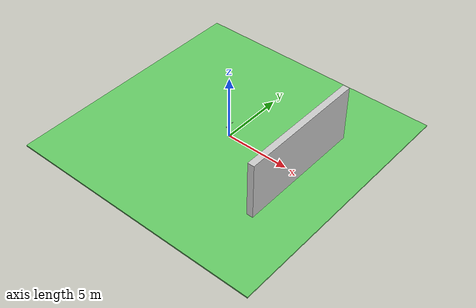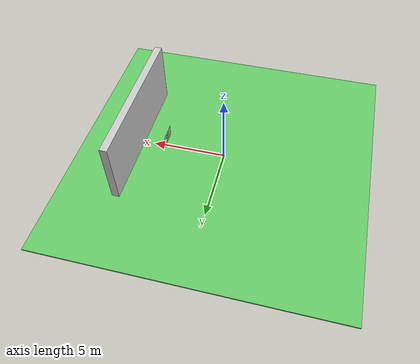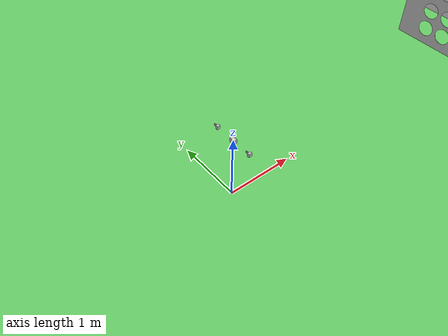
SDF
<?xml version="1.0" ?>
<!--
  Demo world consisting of a thermal camera sensor and several models with
  different temperatures specified via the thermal system plugin.
-->

<sdf version="1.6">
  <world name="thermal_camera">
    <physics name="1ms" type="ignored">
      <max_step_size>0.001</max_step_size>
      <real_time_factor>1.0</real_time_factor>
    </physics>
    <plugin
      filename="ignition-gazebo-physics-system"
      name="ignition::gazebo::systems::Physics">
    </plugin>
    <plugin
      filename="ignition-gazebo-sensors-system"
      name="ignition::gazebo::systems::Sensors">
      <render_engine>ogre2</render_engine>
    </plugin>
    <plugin
      filename="ignition-gazebo-scene-broadcaster-system"
      name="ignition::gazebo::systems::SceneBroadcaster">
    </plugin>
    <plugin
      filename="ignition-gazebo-user-commands-system"
      name="ignition::gazebo::systems::UserCommands">
    </plugin>

    <gui fullscreen="0">

      <!-- 3D scene -->
      <plugin filename="GzScene3D" name="3D View">
        <ignition-gui>
          <title>3D View</title>
          <property type="bool" key="showTitleBar">false</property>
          <property type="string" key="state">docked</property>
        </ignition-gui>

        <engine>ogre2</engine>
        <scene>scene</scene>
        <ambient_light>0.4 0.4 0.4</ambient_light>
        <background_color>0.2 0.2 0.8</background_color>
        <camera_pose>-6 0 6 0 0.5 0</camera_pose>
      </plugin>

      <!-- World control -->
      <plugin filename="WorldControl" name="World control">
        <ignition-gui>
          <title>World control</title>
          <property type="bool" key="showTitleBar">false</property>
          <property type="bool" key="resizable">false</property>
          <property type="double" key="height">72</property>
          <property type="double" key="width">121</property>
          <property type="double" key="z">1</property>

          <property type="string" key="state">floating</property>
          <anchors target="3D View">
            <line own="left" target="left"/>
            <line own="bottom" target="bottom"/>
          </anchors>
        </ignition-gui>

        <play_pause>true</play_pause>
        <step>true</step>
        <start_paused>true</start_paused>
        <service>/world/thermal_camera/control</service>
        <stats_topic>/world/thermal_camera/stats</stats_topic>

      </plugin>

      <!-- World statistics -->
      <plugin filename="WorldStats" name="World stats">
        <ignition-gui>
          <title>World stats</title>
          <property type="bool" key="showTitleBar">false</property>
          <property type="bool" key="resizable">false</property>
          <property type="double" key="height">110</property>
          <property type="double" key="width">290</property>
          <property type="double" key="z">1</property>

          <property type="string" key="state">floating</property>
          <anchors target="3D View">
            <line own="right" target="right"/>
            <line own="bottom" target="bottom"/>
          </anchors>
        </ignition-gui>

        <sim_time>true</sim_time>
        <real_time>true</real_time>
        <real_time_factor>true</real_time_factor>
        <iterations>true</iterations>
        <topic>/world/thermal_camera/stats</topic>
      </plugin>

    </gui>

    <light type="directional" name="sun">
      <cast_shadows>true</cast_shadows>
      <pose>-10 0 10 0 0 0</pose>
      <diffuse>0.8 0.8 0.8 1</diffuse>
      <specular>0.2 0.2 0.2 1</specular>
      <attenuation>
        <range>1000</range>
        <constant>0.9</constant>
        <linear>0.01</linear>
        <quadratic>0.001</quadratic>
      </attenuation>
      <direction>-1.0 0.0 -0.9</direction>
    </light>

    <atmosphere type="adiabatic">
      <temperature>300</temperature>
      <temperature_gradient>-0.065</temperature_gradient>
    </atmosphere>

    <model name="ground_plane">
      <static>true</static>
      <link name="link">
        <collision name="collision">
          <geometry>
            <box>
              <size>20 20 0.1</size>
            </box>
          </geometry>
        </collision>
        <visual name="visual">
          <geometry>
            <box>
              <size>20 20 0.1</size>
            </box>
          </geometry>
          <material>
            <ambient>0.2 0.8 0.8 1</ambient>
            <diffuse>0.4 0.8 0.4 1</diffuse>
            <specular>0.8 0.8 0.8 1</specular>
          </material>
        </visual>
      </link>
    </model>

    <!-- Stereo thermal-->
    <model name="thermal_camera_8bit_left">
      <pose>0 0.3 1 0.0 0.0 0</pose>
      <link name="left_thermal_link">
        <pose>0.0 0.0 0.0 0 0 0</pose>
        <collision name="collision">
          <geometry>
            <box>
              <size>0.0465 0.036 0.05</size>
            </box>
          </geometry>
        </collision>
        <visual name="visual">
          <geometry>
            <box>
              <size>0.0465 0.036 0.05</size>
            </box>
          </geometry>
        </visual>
        <sensor name="thermal_camera_8bit_left" type="thermal">
          <camera>
            <horizontal_fov>0.558505</horizontal_fov>
            <image>
              <width>640</width>
              <height>512</height>
              <format>L8</format>
            </image>
            <clip>
              <near>0.1</near>
              <far>100</far>
            </clip>
          </camera>
          <always_on>1</always_on>
          <update_rate>30</update_rate>
          <visualize>true</visualize>
          <topic>thermal_camera_8bit_left/image</topic>
          <plugin
            filename="ignition-gazebo-thermal-sensor-system"
            name="ignition::gazebo::systems::ThermalSensor">
            <min_temp>253.15</min_temp>
            <max_temp>673.15</max_temp>
            <resolution>3.0</resolution>
          </plugin>

        </sensor>
      </link>
      <static>true</static>
    </model>

    <model name="thermal_camera_8bit_right">
      <pose>0 -0.3 1 0.0 0.0 0</pose>
      <link name="right_thermal_link">
        <pose>0.0 0.0 0.0 0 0 0</pose>
        <collision name="collision">
          <geometry>
            <box>
              <size>0.0465 0.036 0.05</size>
            </box>
          </geometry>
        </collision>
        <visual name="visual">
          <geometry>
            <box>
              <size>0.0465 0.036 0.05</size>
            </box>
          </geometry>
        </visual>
        <sensor name="thermal_camera_8bit_right" type="thermal">
          <camera>
            <horizontal_fov>0.558505</horizontal_fov>
            <image>
              <width>640</width>
              <height>512</height>
              <format>L8</format>
            </image>
            <clip>
              <near>0.1</near>
              <far>100</far>
            </clip>
          </camera>
          <always_on>1</always_on>
          <update_rate>30</update_rate>
          <visualize>true</visualize>
          <topic>thermal_camera_8bit_right/image</topic>
          <plugin
            filename="ignition-gazebo-thermal-sensor-system"
            name="ignition::gazebo::systems::ThermalSensor">
            <min_temp>253.15</min_temp>
            <max_temp>673.15</max_temp>
            <resolution>3.0</resolution>
          </plugin>

        </sensor>
      </link>
      <static>true</static>
    </model>

    <model name="camera_left">
      <pose>0 0.35 1.0 0 0.0 0.0</pose>
      <link name="left_camera_link">
        <pose>0.0 0.0 0.0 0 0 0</pose>
        <collision name="collision">
          <geometry>
            <box>
              <size>0.01 0.03 0.03</size>
            </box>
          </geometry>
        </collision>
        <visual name="visual">
          <geometry>
            <box>
              <size>0.01 0.03 0.03</size>
            </box>
          </geometry>
        </visual>
        <sensor name="camera_left" type="camera">
          <camera>
            <horizontal_fov>1.0053</horizontal_fov>
            <image>
              <width>1600</width>
              <height>1300</height>
              <format>L8</format>
            </image>
            <clip>
              <near>0.1</near>
              <far>100</far>
            </clip>
          </camera>
          <always_on>1</always_on>
          <update_rate>30</update_rate>
          <visualize>true</visualize>
          <topic>camera_left/image</topic>
        </sensor>
      </link>
      <static>true</static>
    </model>

    <model name="camera_right">
      <pose>0 -0.25 1.0 0 0.0 0.0</pose>
      <link name="right_camera_link">
        <pose>0.0 0.0 0.0 0 0 0</pose>
        <collision name="collision">
          <geometry>
            <box>
              <size>0.01 0.03 0.03</size>
            </box>
          </geometry>
        </collision>
        <visual name="visual">
          <geometry>
            <box>
              <size>0.01 0.03 0.03</size>
            </box>
          </geometry>
        </visual>
        <sensor name="camera_right" type="camera">
          <camera>
            <horizontal_fov>1.0053</horizontal_fov>
            <image>
              <width>1600</width>
              <height>1300</height>
              <format>L8</format>
            </image>
            <clip>
              <near>0.1</near>
              <far>100</far>
            </clip>
          </camera>
          <always_on>1</always_on>
          <update_rate>30</update_rate>
          <visualize>true</visualize>
          <topic>camera_right/image</topic>
        </sensor>
      </link>
      <static>true</static>
    </model>

    <!-- Blickfeld cube -->
    <model name="Blickfeld">
      <pose>0 0 1.0 0 0.0 0.0</pose>
      <link name="Blickfeld_link">
        <pose>0.0 0.0 0.0 0 0 0</pose>
        <collision name="collision">
          <geometry>
            <box>
              <size>0.05 0.082 0.06</size>
            </box>
          </geometry>
        </collision>
        <visual name="visual">
          <geometry>
            <box>
              <size>0.05 0.082 0.06</size>
            </box>
          </geometry>
        </visual>
        <sensor name="Blickfeld" type="gpu_lidar">
          <topic>lidar</topic>
          <update_rate>2.5</update_rate>
          <ray>
            <scan>
              <horizontal>
                <samples>175</samples>
                <resolution>1</resolution>
                <min_angle>-0.610865</min_angle>
                <max_angle>0.610865</max_angle>
              </horizontal>
              <vertical>
                <samples>200</samples>
                <resolution>1</resolution>
                <min_angle>-0.2618</min_angle>
                <max_angle>0.2618</max_angle>
              </vertical>
            </scan>
            <range>
              <min>1.5</min>
              <max>75.0</max>
              <resolution>0.01</resolution>
            </range>
            <noise>
              <type>gaussian</type>
              <mean>0.0</mean>
              <stddev>0.02</stddev>
            </noise>
          </ray>
          <always_on>1</always_on>
          <visualize>true</visualize>
        </sensor>
      </link>
      <static>true</static>
    </model>

    <!--Background wall-->
    <model name="background wall">
      <pose>6 0 2 0 0 0</pose>
      <static>true</static>
      <link name="wall">
        <visual name="visual">
          <pose>0 0 0 0 0 0</pose>
          <geometry>
            <box>
              <size>0.5 10 5</size>
            </box>
          </geometry>
          <material>
            <ambient>0.8 0.8 0.8 1</ambient>
            <diffuse>0.8 0.8 0.8 1</diffuse>
            <specular>0.8 0.8 0.8 1</specular>
            <emissive>0.5 0.5 0.5 1</emissive>
          </material>
        </visual>
      </link>
    </model>

    <!-- Calibration target-->
    <model name="lvt2_target">
      <pose>4 0 1 0 0 1.5708</pose>
      <static>true</static>
      <link name="calib_target">
        <visual name="visual">
			    <pose>0 0 0 0 0 0</pose>
            <geometry>
            <mesh><uri>model://calib_target/lvt2_target/lvt2_target.obj</uri></mesh>
            </geometry>
            <plugin
            filename="ignition-gazebo-thermal-system"
            name="gz::sim::systems::Thermal">
            <temperature>323.0</temperature>
          </plugin>
        </visual>
		  <collision name="collision">
			  <pose>0 0 0  0 0 0</pose>
			  <geometry>
				<mesh><uri>model://calib_target/lvt2_target/lvt2_target.obj</uri></mesh>
			  </geometry>
		  </collision>
      </link>
    </model>

  </world>
</sdf>
